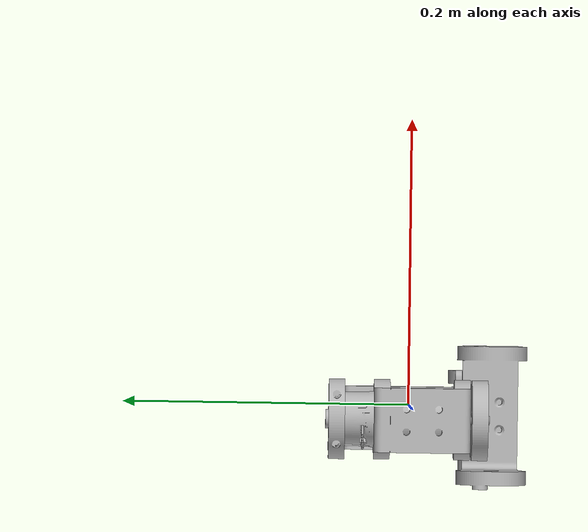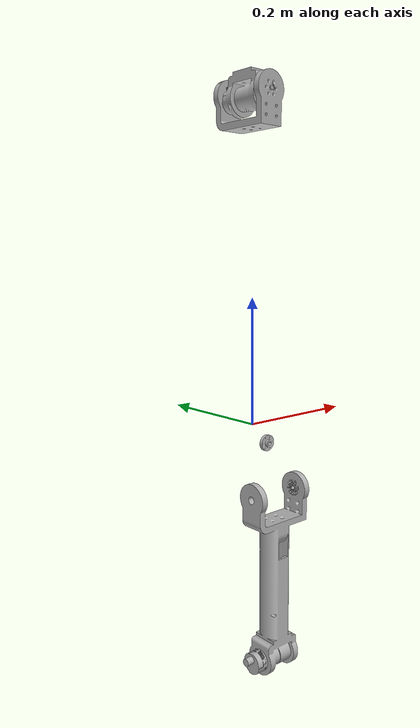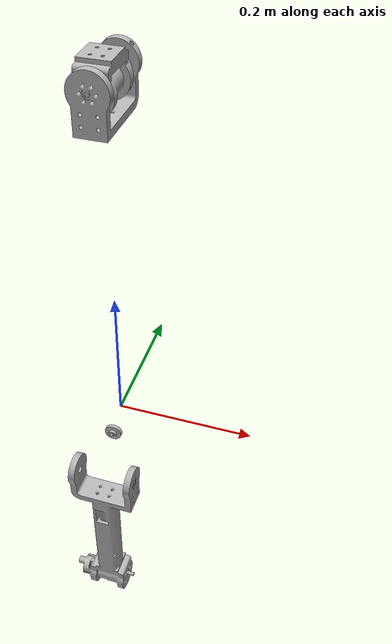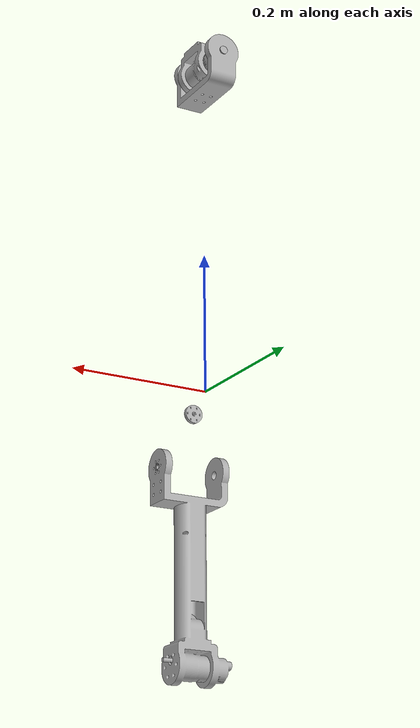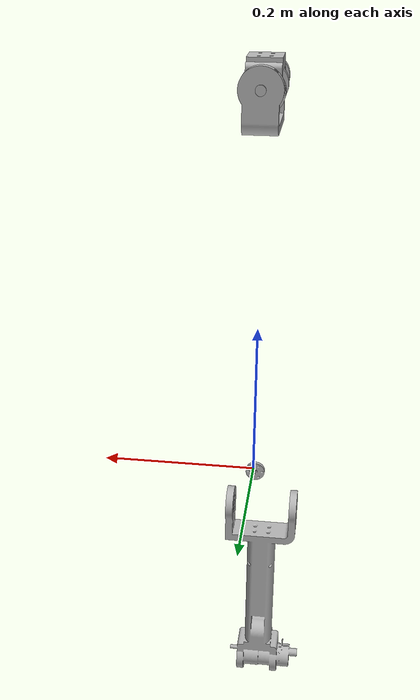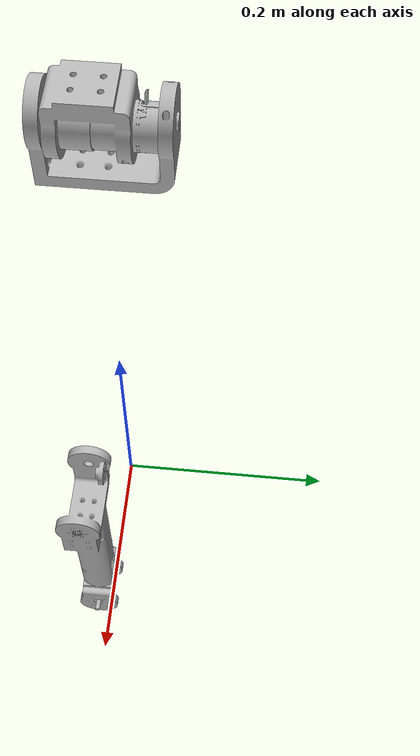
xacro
<?xml version="1.0" ?>
<robot name="test" xmlns:xacro="http://www.ros.org/wiki/xacro">

<xacro:include filename="$(find test_description)/urdf/materials.xacro" />
<xacro:include filename="$(find test_description)/urdf/test.trans" />
<xacro:include filename="$(find test_description)/urdf/test.gazebo" />
<link name="base_link">
  <inertial>
    <origin rpy="0 0 0" xyz="-2.7174602321866267e-05 0.006053798965408933 -0.028185037843435335"/>
    <mass value="0.512530898807761"/>
    <inertia ixx="0.000232" ixy="0.0" ixz="0.0" iyy="0.000107" iyz="6e-06" izz="0.000214"/>
  </inertial>
  <visual>
    <origin rpy="0 0 0" xyz="0 0 0"/>
    <geometry>
      <mesh filename="package://test_description/meshes/base_link.stl" scale="0.001 0.001 0.001"/>
    </geometry>
    <material name="silver_default"/>
  </visual>
  <collision>
    <origin rpy="0 0 0" xyz="0 0 0"/>
    <geometry>
      <mesh filename="package://test_description/meshes/base_link.stl" scale="0.001 0.001 0.001"/>
    </geometry>
  </collision>
</link>

<link name="joint_v3_1">
  <inertial>
    <origin rpy="0 0 0" xyz="-0.019923558879193413 -0.05684519463854321 -0.034818702091367684"/>
    <mass value="0.006810016850259386"/>
    <inertia ixx="0.0" ixy="0.0" ixz="0.0" iyy="1e-06" iyz="0.0" izz="0.0"/>
  </inertial>
  <visual>
    <origin rpy="0 0 0" xyz="-0.019925 -0.022925 -0.012"/>
    <geometry>
      <mesh filename="package://test_description/meshes/joint_v3_1.stl" scale="0.001 0.001 0.001"/>
    </geometry>
    <material name="silver_default"/>
  </visual>
  <collision>
    <origin rpy="0 0 0" xyz="-0.019925 -0.022925 -0.012"/>
    <geometry>
      <mesh filename="package://test_description/meshes/joint_v3_1.stl" scale="0.001 0.001 0.001"/>
    </geometry>
  </collision>
</link>

<link name="link1_1">
  <inertial>
    <origin rpy="0 0 0" xyz="0.010746815859307552 -0.04053075039997803 -0.10277811362841968"/>
    <mass value="0.6370785777172516"/>
    <inertia ixx="0.000916" ixy="-4.6e-05" ixz="-5e-05" iyy="0.000564" iyz="-0.000305" izz="0.000784"/>
  </inertial>
  <visual>
    <origin rpy="0 0 0" xyz="0.0179 0.0103 -0.008004"/>
    <geometry>
      <mesh filename="package://test_description/meshes/link1_1.stl" scale="0.001 0.001 0.001"/>
    </geometry>
    <material name="silver_default"/>
  </visual>
  <collision>
    <origin rpy="0 0 0" xyz="0.0179 0.0103 -0.008004"/>
    <geometry>
      <mesh filename="package://test_description/meshes/link1_1.stl" scale="0.001 0.001 0.001"/>
    </geometry>
  </collision>
</link>

<link name="joint_v3_2">
  <inertial>
    <origin rpy="0 0 0" xyz="0.12984519463854308 0.022076441120806645 -0.05361870209136768"/>
    <mass value="0.006810016850259386"/>
    <inertia ixx="1e-06" ixy="-0.0" ixz="-0.0" iyy="0.0" iyz="0.0" izz="0.0"/>
  </inertial>
  <visual>
    <origin rpy="0 0 0" xyz="0.095925 0.082875 0.0422"/>
    <geometry>
      <mesh filename="package://test_description/meshes/joint_v3_2.stl" scale="0.001 0.001 0.001"/>
    </geometry>
    <material name="silver_default"/>
  </visual>
  <collision>
    <origin rpy="0 0 0" xyz="0.095925 0.082875 0.0422"/>
    <geometry>
      <mesh filename="package://test_description/meshes/joint_v3_2.stl" scale="0.001 0.001 0.001"/>
    </geometry>
  </collision>
</link>

<link name="link2_1">
  <inertial>
    <origin rpy="0 0 0" xyz="0.05339113812171666 0.06140399999997151 -0.05916560480381163"/>
    <mass value="0.09077100718883686"/>
    <inertia ixx="6e-05" ixy="0.0" ixz="4e-06" iyy="0.000179" iyz="0.0" izz="0.000147"/>
  </inertial>
  <visual>
    <origin rpy="0 0 0" xyz="0.0627 0.122204 0.061246"/>
    <geometry>
      <mesh filename="package://test_description/meshes/link2_1.stl" scale="0.001 0.001 0.001"/>
    </geometry>
    <material name="silver_default"/>
  </visual>
  <collision>
    <origin rpy="0 0 0" xyz="0.0627 0.122204 0.061246"/>
    <geometry>
      <mesh filename="package://test_description/meshes/link2_1.stl" scale="0.001 0.001 0.001"/>
    </geometry>
  </collision>
</link>

<joint name="Rev7" type="continuous">
  <origin rpy="0 0 0" xyz="0.019925 0.022925 0.012"/>
  <parent link="base_link"/>
  <child link="joint_v3_1"/>
  <axis xyz="0.0 -1.0 -0.0"/>
</joint>

<joint name="Rigid8" type="fixed">
  <origin rpy="0 0 0" xyz="-0.037825 -0.033225 -0.003996"/>
  <parent link="joint_v3_1"/>
  <child link="link1_1"/>
</joint>

<joint name="Rev9" type="continuous">
  <origin rpy="0 0 0" xyz="-0.078025 -0.072575 -0.050204"/>
  <parent link="link1_1"/>
  <child link="joint_v3_2"/>
  <axis xyz="1.0 -0.0 -0.0"/>
</joint>

<joint name="Rigid10" type="fixed">
  <origin rpy="0 0 0" xyz="0.033225 -0.039329 -0.019046"/>
  <parent link="joint_v3_2"/>
  <child link="link2_1"/>
</joint>

</robot>

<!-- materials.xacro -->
<robot name="test" xmlns:xacro="http://www.ros.org/wiki/xacro" >

<material name="silver_default">
  <color rgba="0.700 0.700 0.700 1.000"/>
</material>

</robot>

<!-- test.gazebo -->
<robot name="test" xmlns:xacro="http://www.ros.org/wiki/xacro" >

<xacro:property name="body_color" value="Gazebo/Silver" />

<gazebo>
  <plugin filename="libgazebo_ros_control.so" name="control"/>
</gazebo>
<gazebo reference="base_link">
  <material>${body_color}</material>
  <mu1>0.2</mu1>
  <mu2>0.2</mu2>
  <selfCollide>true</selfCollide>
  <gravity>true</gravity>
</gazebo>

<gazebo reference="link1_1">
  <material>${body_color}</material>
  <mu1>0.2</mu1>
  <mu2>0.2</mu2>
  <selfCollide>true</selfCollide>
</gazebo>

</robot>
